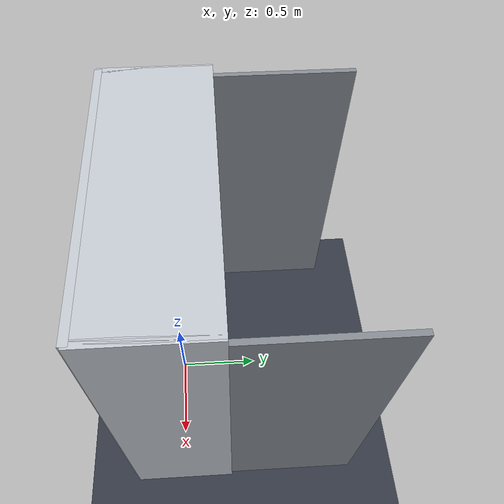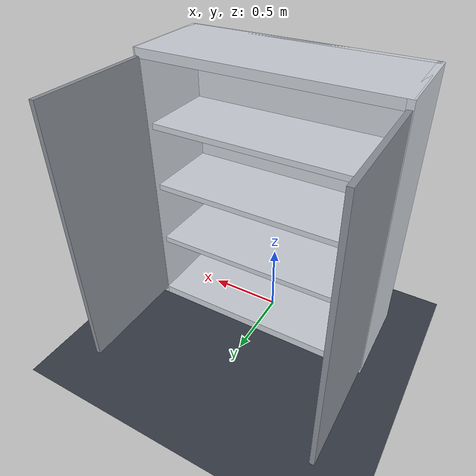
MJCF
<mujoco model="cabinet_scene">
  <option timestep="0.004" integrator="implicitfast"/>
  <compiler angle="radian"/>

  <visual>
    <global offwidth="1920" offheight="1080" elevation="-22" azimuth="135"/>
    <rgba haze="0.14 0.16 0.20 1"/>
    <map force="0.1" zfar="40"/>
    <quality shadowsize="4096"/>
  </visual>

  <statistic center="0 0 0.95" extent="2.5"/>

  <asset>
    <texture type="skybox" builtin="gradient" rgb1=".25 .3 .38" rgb2="0 0 0" width="32" height="512"/>
    <texture name="grid" type="2d" builtin="checker" width="512" height="512"
             rgb1=".18 .20 .24" rgb2=".24 .27 .32"/>
    <material name="grid" texture="grid" texrepeat="8 8" texuniform="true" reflectance=".15"/>
    <material name="shelf" rgba="0.80 0.82 0.85 1" reflectance="0.1"/>
    <material name="metal" rgba="0.55 0.57 0.60 1" reflectance="0.35"/>
  </asset>

  <default>
    <geom condim="3" friction="0.9 0.05 0.005" solref="0.008 1"/>
  </default>

  <worldbody>
    <geom name="floor" type="plane" size="0 0 0.05" material="grid" condim="3"/>
    <light name="top1" pos="0 0 3.5" dir="0 0 -1" diffuse="0.6 0.6 0.6"/>
    <light name="side" pos="0 -2.5 2.2" dir="0 1 -1" diffuse="0.4 0.4 0.4"/>
    <camera name="overview" pos="0 -2.8 1.3" xyaxes="1 0 0 0 0.42 0.91"/>
    <camera name="top" pos="0 0 3.5" xyaxes="1 0 0 0 1 0"/>

    <!-- ================= 柜子（双开门（铰链可开闭） + 三层挡板） ================= -->
    <!-- 柜宽 1.6(半0.8) 深 0.6(半0.3) 高 1.9；置于原点，正面朝 +y -->
    <body name="cabinet" pos="0 0 0" euler="0 0 0">
      <!-- 柜体外壳 -->
      <geom type="box" pos="0 0 0.03"   size="0.8 0.3 0.03" material="shelf"/>  <!-- 底板 -->
      <geom type="box" pos="0 0 1.87"   size="0.8 0.3 0.03" material="shelf"/>  <!-- 顶板 -->
      <geom type="box" pos="0 -0.29 0.95" size="0.8 0.02 0.95" material="shelf"/> <!-- 背板 -->
      <geom type="box" pos="0.79 0 0.95"  size="0.02 0.3 0.95" material="shelf"/> <!-- 右侧板 -->
      <geom type="box" pos="-0.79 0 0.95" size="0.02 0.3 0.95" material="shelf"/> <!-- 左侧板 -->
      <!-- 三层内部挡板 -->
      <geom type="box" pos="0 -0.02 0.50" size="0.78 0.28 0.02" material="shelf"/>
      <geom type="box" pos="0 -0.02 0.95" size="0.78 0.28 0.02" material="shelf"/>
      <geom type="box" pos="0 -0.02 1.40" size="0.78 0.28 0.02" material="shelf"/>
      <!-- 双开柜门（绕竖直 z 轴铰链开闭，qpos=0 为关闭；初始打开 90°，朝 +y 打开） -->
      <!-- 左门：铰链位于 x=-0.79（贴左侧板前缘），门扇沿 +y 打开；ref=1.57 表示初始开 90° -->
      <body name="cabinet_door_l" pos="-0.79 0.30 0.95">
        <joint name="cabinet_door_l_j" type="hinge" axis="0 0 1"
               range="0 1.65" ref="1.57" damping="0.3" frictionloss="0.05"/>
        <geom name="cabinet_door_l_panel" type="box" pos="0 0.38 0" euler="0 0 1.57"
              size="0.38 0.015 0.9" material="metal" mass="2"/>
      </body>
      <!-- 右门：铰链位于 x=0.79（贴右侧板前缘），门扇沿 +y 打开；ref=-1.57 表示初始开 90° -->
      <body name="cabinet_door_r" pos="0.79 0.30 0.95">
        <joint name="cabinet_door_r_j" type="hinge" axis="0 0 1"
               range="-1.65 0" ref="-1.57" damping="0.3" frictionloss="0.05"/>
        <geom name="cabinet_door_r_panel" type="box" pos="0 0.38 0" euler="0 0 1.57"
              size="0.38 0.015 0.9" material="metal" mass="2"/>
      </body>
    </body>
  </worldbody>
</mujoco>
